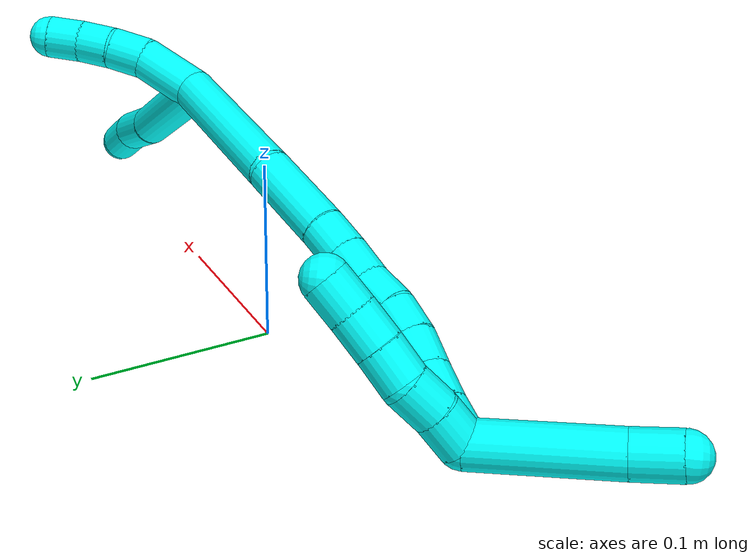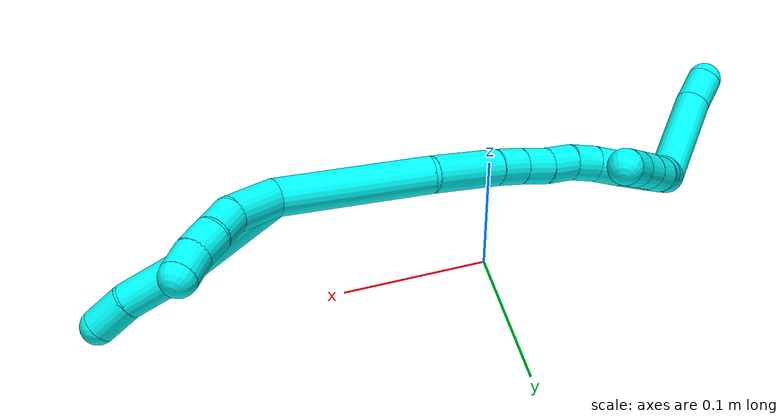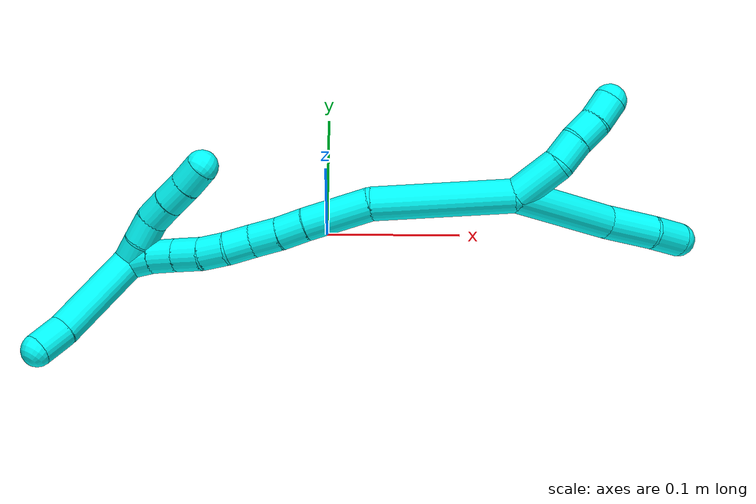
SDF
<sdf version="1.7">
 <world name="default">
  <model name="3">
   <static>0</static>
   <link name="3">
    <collision name="collision-cylinder-e_1_2_8">
     <pose>0.025247 -0.028194 -0.01684 2.10923 0.655415 1.07945</pose>
     <geometry><cylinder><radius>0.0125</radius><length>0.082846</length></cylinder></geometry>
     <surface>
      <friction><ode><mu>1.16</mu><mu2>1.16</mu2><slip1>0</slip1><slip2>0</slip2></ode></friction>
      <contact><ode><kp>1e+06</kp><kd>1</kd><max_vel>0</max_vel><min_depth>0.001</min_depth></ode></contact>
     </surface>
    </collision>
    <visual name="visual-cylinder-e_1_2_8">
     <pose>0.025247 -0.028194 -0.01684 2.10923 0.655415 1.07945</pose>
     <geometry><cylinder><radius>0.0125</radius><length>0.082846</length></cylinder></geometry>
     <material><ambient>0.003922 1 0.996078 1</ambient></material>
    </visual>
    <collision name="collision-cylinder-e_2_8_9">
     <pose>0.064624 -0.067792 -0.042245 2.21493 0.780762 1.378</pose>
     <geometry><cylinder><radius>0.0125</radius><length>0.040153</length></cylinder></geometry>
     <surface>
      <friction><ode><mu>1.16</mu><mu2>1.16</mu2><slip1>0</slip1><slip2>0</slip2></ode></friction>
      <contact><ode><kp>1e+06</kp><kd>1</kd><max_vel>0</max_vel><min_depth>0.001</min_depth></ode></contact>
     </surface>
    </collision>
    <visual name="visual-cylinder-e_2_8_9">
     <pose>0.064624 -0.067792 -0.042245 2.21493 0.780762 1.378</pose>
     <geometry><cylinder><radius>0.0125</radius><length>0.040153</length></cylinder></geometry>
     <material><ambient>0.003922 1 0.996078 1</ambient></material>
    </visual>
    <collision name="collision-cylinder-e_3_9_6">
     <pose>0.086356 -0.08876 -0.056554 2.11173 0.598076 0.997709</pose>
     <geometry><cylinder><radius>0.0125</radius><length>0.027</length></cylinder></geometry>
     <surface>
      <friction><ode><mu>1.16</mu><mu2>1.16</mu2><slip1>0</slip1><slip2>0</slip2></ode></friction>
      <contact><ode><kp>1e+06</kp><kd>1</kd><max_vel>0</max_vel><min_depth>0.001</min_depth></ode></contact>
     </surface>
    </collision>
    <visual name="visual-cylinder-e_3_9_6">
     <pose>0.086356 -0.08876 -0.056554 2.11173 0.598076 0.997709</pose>
     <geometry><cylinder><radius>0.0125</radius><length>0.027</length></cylinder></geometry>
     <material><ambient>0.003922 1 0.996078 1</ambient></material>
    </visual>
    <collision name="collision-cylinder-e_1_2_10">
     <pose>0.008857 0.004224 -0.016345 -2.88869 0.483183 -2.18897</pose>
     <geometry><cylinder><radius>0.0125</radius><length>0.038129</length></cylinder></geometry>
     <surface>
      <friction><ode><mu>1.16</mu><mu2>1.16</mu2><slip1>0</slip1><slip2>0</slip2></ode></friction>
      <contact><ode><kp>1e+06</kp><kd>1</kd><max_vel>0</max_vel><min_depth>0.001</min_depth></ode></contact>
     </surface>
    </collision>
    <visual name="visual-cylinder-e_1_2_10">
     <pose>0.008857 0.004224 -0.016345 -2.88869 0.483183 -2.18897</pose>
     <geometry><cylinder><radius>0.0125</radius><length>0.038129</length></cylinder></geometry>
     <material><ambient>0.003922 1 0.996078 1</ambient></material>
    </visual>
    <collision name="collision-cylinder-e_2_10_11">
     <pose>0.019483 0.009858 -0.043278 -3.00921 0.164019 -1.78422</pose>
     <geometry><cylinder><radius>0.0125</radius><length>0.021652</length></cylinder></geometry>
     <surface>
      <friction><ode><mu>1.16</mu><mu2>1.16</mu2><slip1>0</slip1><slip2>0</slip2></ode></friction>
      <contact><ode><kp>1e+06</kp><kd>1</kd><max_vel>0</max_vel><min_depth>0.001</min_depth></ode></contact>
     </surface>
    </collision>
    <visual name="visual-cylinder-e_2_10_11">
     <pose>0.019483 0.009858 -0.043278 -3.00921 0.164019 -1.78422</pose>
     <geometry><cylinder><radius>0.0125</radius><length>0.021652</length></cylinder></geometry>
     <material><ambient>0.003922 1 0.996078 1</ambient></material>
    </visual>
    <collision name="collision-cylinder-e_3_11_12">
     <pose>0.023696 0.011181 -0.063599 3.13271 0.246197 3.06979</pose>
     <geometry><cylinder><radius>0.0125</radius><length>0.020074</length></cylinder></geometry>
     <surface>
      <friction><ode><mu>1.16</mu><mu2>1.16</mu2><slip1>0</slip1><slip2>0</slip2></ode></friction>
      <contact><ode><kp>1e+06</kp><kd>1</kd><max_vel>0</max_vel><min_depth>0.001</min_depth></ode></contact>
     </surface>
    </collision>
    <visual name="visual-cylinder-e_3_11_12">
     <pose>0.023696 0.011181 -0.063599 3.13271 0.246197 3.06979</pose>
     <geometry><cylinder><radius>0.0125</radius><length>0.020074</length></cylinder></geometry>
     <material><ambient>0.003922 1 0.996078 1</ambient></material>
    </visual>
    <collision name="collision-cylinder-e_4_12_5">
     <pose>0.026745 0.0112 -0.083386 -3.13114 0.059853 -2.79582</pose>
     <geometry><cylinder><radius>0.0125</radius><length>0.020145</length></cylinder></geometry>
     <surface>
      <friction><ode><mu>1.16</mu><mu2>1.16</mu2><slip1>0</slip1><slip2>0</slip2></ode></friction>
      <contact><ode><kp>1e+06</kp><kd>1</kd><max_vel>0</max_vel><min_depth>0.001</min_depth></ode></contact>
     </surface>
    </collision>
    <visual name="visual-cylinder-e_4_12_5">
     <pose>0.026745 0.0112 -0.083386 -3.13114 0.059853 -2.79582</pose>
     <geometry><cylinder><radius>0.0125</radius><length>0.020145</length></cylinder></geometry>
     <material><ambient>0.003922 1 0.996078 1</ambient></material>
    </visual>
    <collision name="collision-cylinder-e_1_2_13">
     <pose>-0.044982 0.00254 0.027188 -0.093152 -1.02521 0.05245</pose>
     <geometry><cylinder><radius>0.0125</radius><length>0.105244</length></cylinder></geometry>
     <surface>
      <friction><ode><mu>1.16</mu><mu2>1.16</mu2><slip1>0</slip1><slip2>0</slip2></ode></friction>
      <contact><ode><kp>1e+06</kp><kd>1</kd><max_vel>0</max_vel><min_depth>0.001</min_depth></ode></contact>
     </surface>
    </collision>
    <visual name="visual-cylinder-e_1_2_13">
     <pose>-0.044982 0.00254 0.027188 -0.093152 -1.02521 0.05245</pose>
     <geometry><cylinder><radius>0.0125</radius><length>0.105244</length></cylinder></geometry>
     <material><ambient>0.003922 1 0.996078 1</ambient></material>
    </visual>
    <collision name="collision-cylinder-e_2_13_14">
     <pose>-0.108899 0.000938 0.070528 0.251033 -0.848789 -0.113906</pose>
     <geometry><cylinder><radius>0.0125</radius><length>0.050459</length></cylinder></geometry>
     <surface>
      <friction><ode><mu>1.16</mu><mu2>1.16</mu2><slip1>0</slip1><slip2>0</slip2></ode></friction>
      <contact><ode><kp>1e+06</kp><kd>1</kd><max_vel>0</max_vel><min_depth>0.001</min_depth></ode></contact>
     </surface>
    </collision>
    <visual name="visual-cylinder-e_2_13_14">
     <pose>-0.108899 0.000938 0.070528 0.251033 -0.848789 -0.113906</pose>
     <geometry><cylinder><radius>0.0125</radius><length>0.050459</length></cylinder></geometry>
     <material><ambient>0.003922 1 0.996078 1</ambient></material>
    </visual>
    <collision name="collision-cylinder-e_3_14_15">
     <pose>-0.135532 -0.005643 0.093288 0.353487 -0.829688 -0.156995</pose>
     <geometry><cylinder><radius>0.0125</radius><length>0.02087</length></cylinder></geometry>
     <surface>
      <friction><ode><mu>1.16</mu><mu2>1.16</mu2><slip1>0</slip1><slip2>0</slip2></ode></friction>
      <contact><ode><kp>1e+06</kp><kd>1</kd><max_vel>0</max_vel><min_depth>0.001</min_depth></ode></contact>
     </surface>
    </collision>
    <visual name="visual-cylinder-e_3_14_15">
     <pose>-0.135532 -0.005643 0.093288 0.353487 -0.829688 -0.156995</pose>
     <geometry><cylinder><radius>0.0125</radius><length>0.02087</length></cylinder></geometry>
     <material><ambient>0.003922 1 0.996078 1</ambient></material>
    </visual>
    <collision name="collision-cylinder-e_4_15_16">
     <pose>-0.15173 -0.010359 0.106163 0.348629 -0.905689 -0.170953</pose>
     <geometry><cylinder><radius>0.0125</radius><length>0.021605</length></cylinder></geometry>
     <surface>
      <friction><ode><mu>1.16</mu><mu2>1.16</mu2><slip1>0</slip1><slip2>0</slip2></ode></friction>
      <contact><ode><kp>1e+06</kp><kd>1</kd><max_vel>0</max_vel><min_depth>0.001</min_depth></ode></contact>
     </surface>
    </collision>
    <visual name="visual-cylinder-e_4_15_16">
     <pose>-0.15173 -0.010359 0.106163 0.348629 -0.905689 -0.170953</pose>
     <geometry><cylinder><radius>0.0125</radius><length>0.021605</length></cylinder></geometry>
     <material><ambient>0.003922 1 0.996078 1</ambient></material>
    </visual>
    <collision name="collision-cylinder-e_5_16_17">
     <pose>-0.167956 -0.013878 0.119079 0.184548 -0.851598 -0.08389</pose>
     <geometry><cylinder><radius>0.0125</radius><length>0.02054</length></cylinder></geometry>
     <surface>
      <friction><ode><mu>1.16</mu><mu2>1.16</mu2><slip1>0</slip1><slip2>0</slip2></ode></friction>
      <contact><ode><kp>1e+06</kp><kd>1</kd><max_vel>0</max_vel><min_depth>0.001</min_depth></ode></contact>
     </surface>
    </collision>
    <visual name="visual-cylinder-e_5_16_17">
     <pose>-0.167956 -0.013878 0.119079 0.184548 -0.851598 -0.08389</pose>
     <geometry><cylinder><radius>0.0125</radius><length>0.02054</length></cylinder></geometry>
     <material><ambient>0.003922 1 0.996078 1</ambient></material>
    </visual>
    <collision name="collision-cylinder-e_6_17_18">
     <pose>-0.183935 -0.017402 0.130935 0.413291 -0.967709 -0.219453</pose>
     <geometry><cylinder><radius>0.0125</radius><length>0.020041</length></cylinder></geometry>
     <surface>
      <friction><ode><mu>1.16</mu><mu2>1.16</mu2><slip1>0</slip1><slip2>0</slip2></ode></friction>
      <contact><ode><kp>1e+06</kp><kd>1</kd><max_vel>0</max_vel><min_depth>0.001</min_depth></ode></contact>
     </surface>
    </collision>
    <visual name="visual-cylinder-e_6_17_18">
     <pose>-0.183935 -0.017402 0.130935 0.413291 -0.967709 -0.219453</pose>
     <geometry><cylinder><radius>0.0125</radius><length>0.020041</length></cylinder></geometry>
     <material><ambient>0.003922 1 0.996078 1</ambient></material>
    </visual>
    <collision name="collision-cylinder-e_7_18_19">
     <pose>-0.201646 -0.022081 0.140082 0.546226 -1.11695 -0.346533</pose>
     <geometry><cylinder><radius>0.0125</radius><length>0.021046</length></cylinder></geometry>
     <surface>
      <friction><ode><mu>1.16</mu><mu2>1.16</mu2><slip1>0</slip1><slip2>0</slip2></ode></friction>
      <contact><ode><kp>1e+06</kp><kd>1</kd><max_vel>0</max_vel><min_depth>0.001</min_depth></ode></contact>
     </surface>
    </collision>
    <visual name="visual-cylinder-e_7_18_19">
     <pose>-0.201646 -0.022081 0.140082 0.546226 -1.11695 -0.346533</pose>
     <geometry><cylinder><radius>0.0125</radius><length>0.021046</length></cylinder></geometry>
     <material><ambient>0.003922 1 0.996078 1</ambient></material>
    </visual>
    <collision name="collision-cylinder-e_8_19_20">
     <pose>-0.22006 -0.026636 0.148002 0.497075 -1.10292 -0.309714</pose>
     <geometry><cylinder><radius>0.0125</radius><length>0.02007</length></cylinder></geometry>
     <surface>
      <friction><ode><mu>1.16</mu><mu2>1.16</mu2><slip1>0</slip1><slip2>0</slip2></ode></friction>
      <contact><ode><kp>1e+06</kp><kd>1</kd><max_vel>0</max_vel><min_depth>0.001</min_depth></ode></contact>
     </surface>
    </collision>
    <visual name="visual-cylinder-e_8_19_20">
     <pose>-0.22006 -0.026636 0.148002 0.497075 -1.10292 -0.309714</pose>
     <geometry><cylinder><radius>0.0125</radius><length>0.02007</length></cylinder></geometry>
     <material><ambient>0.003922 1 0.996078 1</ambient></material>
    </visual>
    <collision name="collision-cylinder-e_9_20_1">
     <pose>-0.237287 -0.031683 0.15693 0.528415 -0.964831 -0.281473</pose>
     <geometry><cylinder><radius>0.0125</radius><length>0.020126</length></cylinder></geometry>
     <surface>
      <friction><ode><mu>1.16</mu><mu2>1.16</mu2><slip1>0</slip1><slip2>0</slip2></ode></friction>
      <contact><ode><kp>1e+06</kp><kd>1</kd><max_vel>0</max_vel><min_depth>0.001</min_depth></ode></contact>
     </surface>
    </collision>
    <visual name="visual-cylinder-e_9_20_1">
     <pose>-0.237287 -0.031683 0.15693 0.528415 -0.964831 -0.281473</pose>
     <geometry><cylinder><radius>0.0125</radius><length>0.020126</length></cylinder></geometry>
     <material><ambient>0.003922 1 0.996078 1</ambient></material>
    </visual>
    <collision name="collision-cylinder-e_1_1_21">
     <pose>-0.249582 -0.028327 0.198455 -0.169146 -0.108005 0.009165</pose>
     <geometry><cylinder><radius>0.0125</radius><length>0.074644</length></cylinder></geometry>
     <surface>
      <friction><ode><mu>1.16</mu><mu2>1.16</mu2><slip1>0</slip1><slip2>0</slip2></ode></friction>
      <contact><ode><kp>1e+06</kp><kd>1</kd><max_vel>0</max_vel><min_depth>0.001</min_depth></ode></contact>
     </surface>
    </collision>
    <visual name="visual-cylinder-e_1_1_21">
     <pose>-0.249582 -0.028327 0.198455 -0.169146 -0.108005 0.009165</pose>
     <geometry><cylinder><radius>0.0125</radius><length>0.074644</length></cylinder></geometry>
     <material><ambient>0.003922 1 0.996078 1</ambient></material>
    </visual>
    <collision name="collision-cylinder-e_2_21_4">
     <pose>-0.256019 -0.018562 0.246968 -0.286622 -0.191627 0.027735</pose>
     <geometry><cylinder><radius>0.0125</radius><length>0.025356</length></cylinder></geometry>
     <surface>
      <friction><ode><mu>1.16</mu><mu2>1.16</mu2><slip1>0</slip1><slip2>0</slip2></ode></friction>
      <contact><ode><kp>1e+06</kp><kd>1</kd><max_vel>0</max_vel><min_depth>0.001</min_depth></ode></contact>
     </surface>
    </collision>
    <visual name="visual-cylinder-e_2_21_4">
     <pose>-0.256019 -0.018562 0.246968 -0.286622 -0.191627 0.027735</pose>
     <geometry><cylinder><radius>0.0125</radius><length>0.025356</length></cylinder></geometry>
     <material><ambient>0.003922 1 0.996078 1</ambient></material>
    </visual>
    <collision name="collision-cylinder-e_1_1_22">
     <pose>-0.243234 -0.027841 0.15486 -2.37719 0.234621 -0.570393</pose>
     <geometry><cylinder><radius>0.0125</radius><length>0.02</length></cylinder></geometry>
     <surface>
      <friction><ode><mu>1.16</mu><mu2>1.16</mu2><slip1>0</slip1><slip2>0</slip2></ode></friction>
      <contact><ode><kp>1e+06</kp><kd>1</kd><max_vel>0</max_vel><min_depth>0.001</min_depth></ode></contact>
     </surface>
    </collision>
    <visual name="visual-cylinder-e_1_1_22">
     <pose>-0.243234 -0.027841 0.15486 -2.37719 0.234621 -0.570393</pose>
     <geometry><cylinder><radius>0.0125</radius><length>0.02</length></cylinder></geometry>
     <material><ambient>0.003922 1 0.996078 1</ambient></material>
    </visual>
    <collision name="collision-cylinder-e_2_22_23">
     <pose>-0.23897 -0.015295 0.139938 -2.50713 0.195104 -0.579371</pose>
     <geometry><cylinder><radius>0.0125</radius><length>0.02</length></cylinder></geometry>
     <surface>
      <friction><ode><mu>1.16</mu><mu2>1.16</mu2><slip1>0</slip1><slip2>0</slip2></ode></friction>
      <contact><ode><kp>1e+06</kp><kd>1</kd><max_vel>0</max_vel><min_depth>0.001</min_depth></ode></contact>
     </surface>
    </collision>
    <visual name="visual-cylinder-e_2_22_23">
     <pose>-0.23897 -0.015295 0.139938 -2.50713 0.195104 -0.579371</pose>
     <geometry><cylinder><radius>0.0125</radius><length>0.02</length></cylinder></geometry>
     <material><ambient>0.003922 1 0.996078 1</ambient></material>
    </visual>
    <collision name="collision-cylinder-e_3_23_24">
     <pose>-0.23246 -0.00363 0.125337 -2.42382 0.474747 -1.14561</pose>
     <geometry><cylinder><radius>0.0125</radius><length>0.02</length></cylinder></geometry>
     <surface>
      <friction><ode><mu>1.16</mu><mu2>1.16</mu2><slip1>0</slip1><slip2>0</slip2></ode></friction>
      <contact><ode><kp>1e+06</kp><kd>1</kd><max_vel>0</max_vel><min_depth>0.001</min_depth></ode></contact>
     </surface>
    </collision>
    <visual name="visual-cylinder-e_3_23_24">
     <pose>-0.23246 -0.00363 0.125337 -2.42382 0.474747 -1.14561</pose>
     <geometry><cylinder><radius>0.0125</radius><length>0.02</length></cylinder></geometry>
     <material><ambient>0.003922 1 0.996078 1</ambient></material>
    </visual>
    <collision name="collision-cylinder-e_4_24_25">
     <pose>-0.223245 0.007738 0.111711 -2.46892 0.482968 -1.22741</pose>
     <geometry><cylinder><radius>0.0125</radius><length>0.02</length></cylinder></geometry>
     <surface>
      <friction><ode><mu>1.16</mu><mu2>1.16</mu2><slip1>0</slip1><slip2>0</slip2></ode></friction>
      <contact><ode><kp>1e+06</kp><kd>1</kd><max_vel>0</max_vel><min_depth>0.001</min_depth></ode></contact>
     </surface>
    </collision>
    <visual name="visual-cylinder-e_4_24_25">
     <pose>-0.223245 0.007738 0.111711 -2.46892 0.482968 -1.22741</pose>
     <geometry><cylinder><radius>0.0125</radius><length>0.02</length></cylinder></geometry>
     <material><ambient>0.003922 1 0.996078 1</ambient></material>
    </visual>
    <collision name="collision-cylinder-e_5_25_3">
     <pose>-0.214572 0.019017 0.097673 -2.46067 0.414709 -1.07179</pose>
     <geometry><cylinder><radius>0.0125</radius><length>0.02</length></cylinder></geometry>
     <surface>
      <friction><ode><mu>1.16</mu><mu2>1.16</mu2><slip1>0</slip1><slip2>0</slip2></ode></friction>
      <contact><ode><kp>1e+06</kp><kd>1</kd><max_vel>0</max_vel><min_depth>0.001</min_depth></ode></contact>
     </surface>
    </collision>
    <visual name="visual-cylinder-e_5_25_3">
     <pose>-0.214572 0.019017 0.097673 -2.46067 0.414709 -1.07179</pose>
     <geometry><cylinder><radius>0.0125</radius><length>0.02</length></cylinder></geometry>
     <material><ambient>0.003922 1 0.996078 1</ambient></material>
    </visual>
    <collision name="collision-sphere-3">
     <pose>-0.210543 0.024779 0.090561 0 -0 0</pose>
     <geometry><sphere><radius>0.0125</radius></sphere></geometry>
     <surface>
      <friction><ode><mu>1.16</mu><mu2>1.16</mu2><slip1>0</slip1><slip2>0</slip2></ode></friction>
      <contact><ode><kp>1e+06</kp><kd>1</kd><max_vel>0</max_vel><min_depth>0.001</min_depth></ode></contact>
     </surface>
    </collision>
    <visual name="visual-sphere-3">
     <pose>-0.210543 0.024779 0.090561 0 -0 0</pose>
     <geometry><sphere><radius>0.0125</radius></sphere></geometry>
     <material><ambient>0.003922 1 0.996078 1</ambient></material>
    </visual>
    <collision name="collision-sphere-25">
     <pose>-0.218601 0.013256 0.104784 0 -0 0</pose>
     <geometry><sphere><radius>0.0125</radius></sphere></geometry>
     <surface>
      <friction><ode><mu>1.16</mu><mu2>1.16</mu2><slip1>0</slip1><slip2>0</slip2></ode></friction>
      <contact><ode><kp>1e+06</kp><kd>1</kd><max_vel>0</max_vel><min_depth>0.001</min_depth></ode></contact>
     </surface>
    </collision>
    <visual name="visual-sphere-25">
     <pose>-0.218601 0.013256 0.104784 0 -0 0</pose>
     <geometry><sphere><radius>0.0125</radius></sphere></geometry>
     <material><ambient>0.003922 1 0.996078 1</ambient></material>
    </visual>
    <collision name="collision-sphere-24">
     <pose>-0.227889 0.002219 0.118638 0 -0 0</pose>
     <geometry><sphere><radius>0.0125</radius></sphere></geometry>
     <surface>
      <friction><ode><mu>1.16</mu><mu2>1.16</mu2><slip1>0</slip1><slip2>0</slip2></ode></friction>
      <contact><ode><kp>1e+06</kp><kd>1</kd><max_vel>0</max_vel><min_depth>0.001</min_depth></ode></contact>
     </surface>
    </collision>
    <visual name="visual-sphere-24">
     <pose>-0.227889 0.002219 0.118638 0 -0 0</pose>
     <geometry><sphere><radius>0.0125</radius></sphere></geometry>
     <material><ambient>0.003922 1 0.996078 1</ambient></material>
    </visual>
    <collision name="collision-sphere-23">
     <pose>-0.237032 -0.00948 0.132037 0 -0 0</pose>
     <geometry><sphere><radius>0.0125</radius></sphere></geometry>
     <surface>
      <friction><ode><mu>1.16</mu><mu2>1.16</mu2><slip1>0</slip1><slip2>0</slip2></ode></friction>
      <contact><ode><kp>1e+06</kp><kd>1</kd><max_vel>0</max_vel><min_depth>0.001</min_depth></ode></contact>
     </surface>
    </collision>
    <visual name="visual-sphere-23">
     <pose>-0.237032 -0.00948 0.132037 0 -0 0</pose>
     <geometry><sphere><radius>0.0125</radius></sphere></geometry>
     <material><ambient>0.003922 1 0.996078 1</ambient></material>
    </visual>
    <collision name="collision-sphere-22">
     <pose>-0.240909 -0.02111 0.147839 0 -0 0</pose>
     <geometry><sphere><radius>0.0125</radius></sphere></geometry>
     <surface>
      <friction><ode><mu>1.16</mu><mu2>1.16</mu2><slip1>0</slip1><slip2>0</slip2></ode></friction>
      <contact><ode><kp>1e+06</kp><kd>1</kd><max_vel>0</max_vel><min_depth>0.001</min_depth></ode></contact>
     </surface>
    </collision>
    <visual name="visual-sphere-22">
     <pose>-0.240909 -0.02111 0.147839 0 -0 0</pose>
     <geometry><sphere><radius>0.0125</radius></sphere></geometry>
     <material><ambient>0.003922 1 0.996078 1</ambient></material>
    </visual>
    <collision name="collision-sphere-4">
     <pose>-0.258434 -0.015043 0.258906 0 -0 0</pose>
     <geometry><sphere><radius>0.0125</radius></sphere></geometry>
     <surface>
      <friction><ode><mu>1.16</mu><mu2>1.16</mu2><slip1>0</slip1><slip2>0</slip2></ode></friction>
      <contact><ode><kp>1e+06</kp><kd>1</kd><max_vel>0</max_vel><min_depth>0.001</min_depth></ode></contact>
     </surface>
    </collision>
    <visual name="visual-sphere-4">
     <pose>-0.258434 -0.015043 0.258906 0 -0 0</pose>
     <geometry><sphere><radius>0.0125</radius></sphere></geometry>
     <material><ambient>0.003922 1 0.996078 1</ambient></material>
    </visual>
    <collision name="collision-sphere-21">
     <pose>-0.253605 -0.02208 0.23503 0 -0 0</pose>
     <geometry><sphere><radius>0.0125</radius></sphere></geometry>
     <surface>
      <friction><ode><mu>1.16</mu><mu2>1.16</mu2><slip1>0</slip1><slip2>0</slip2></ode></friction>
      <contact><ode><kp>1e+06</kp><kd>1</kd><max_vel>0</max_vel><min_depth>0.001</min_depth></ode></contact>
     </surface>
    </collision>
    <visual name="visual-sphere-21">
     <pose>-0.253605 -0.02208 0.23503 0 -0 0</pose>
     <geometry><sphere><radius>0.0125</radius></sphere></geometry>
     <material><ambient>0.003922 1 0.996078 1</ambient></material>
    </visual>
    <collision name="collision-sphere-1">
     <pose>-0.245558 -0.034573 0.16188 0 -0 0</pose>
     <geometry><sphere><radius>0.0125</radius></sphere></geometry>
     <surface>
      <friction><ode><mu>1.16</mu><mu2>1.16</mu2><slip1>0</slip1><slip2>0</slip2></ode></friction>
      <contact><ode><kp>1e+06</kp><kd>1</kd><max_vel>0</max_vel><min_depth>0.001</min_depth></ode></contact>
     </surface>
    </collision>
    <visual name="visual-sphere-1">
     <pose>-0.245558 -0.034573 0.16188 0 -0 0</pose>
     <geometry><sphere><radius>0.0125</radius></sphere></geometry>
     <material><ambient>0.003922 1 0.996078 1</ambient></material>
    </visual>
    <collision name="collision-sphere-11">
     <pose>0.02125 0.011268 -0.053865 0 -0 0</pose>
     <geometry><sphere><radius>0.0125</radius></sphere></geometry>
     <surface>
      <friction><ode><mu>1.16</mu><mu2>1.16</mu2><slip1>0</slip1><slip2>0</slip2></ode></friction>
      <contact><ode><kp>1e+06</kp><kd>1</kd><max_vel>0</max_vel><min_depth>0.001</min_depth></ode></contact>
     </surface>
    </collision>
    <visual name="visual-sphere-11">
     <pose>0.02125 0.011268 -0.053865 0 -0 0</pose>
     <geometry><sphere><radius>0.0125</radius></sphere></geometry>
     <material><ambient>0.003922 1 0.996078 1</ambient></material>
    </visual>
    <collision name="collision-sphere-10">
     <pose>0.017715 0.008448 -0.03269 0 -0 0</pose>
     <geometry><sphere><radius>0.0125</radius></sphere></geometry>
     <surface>
      <friction><ode><mu>1.16</mu><mu2>1.16</mu2><slip1>0</slip1><slip2>0</slip2></ode></friction>
      <contact><ode><kp>1e+06</kp><kd>1</kd><max_vel>0</max_vel><min_depth>0.001</min_depth></ode></contact>
     </surface>
    </collision>
    <visual name="visual-sphere-10">
     <pose>0.017715 0.008448 -0.03269 0 -0 0</pose>
     <geometry><sphere><radius>0.0125</radius></sphere></geometry>
     <material><ambient>0.003922 1 0.996078 1</ambient></material>
    </visual>
    <collision name="collision-sphere-6">
     <pose>0.093957 -0.098324 -0.062299 0 -0 0</pose>
     <geometry><sphere><radius>0.0125</radius></sphere></geometry>
     <surface>
      <friction><ode><mu>1.16</mu><mu2>1.16</mu2><slip1>0</slip1><slip2>0</slip2></ode></friction>
      <contact><ode><kp>1e+06</kp><kd>1</kd><max_vel>0</max_vel><min_depth>0.001</min_depth></ode></contact>
     </surface>
    </collision>
    <visual name="visual-sphere-6">
     <pose>0.093957 -0.098324 -0.062299 0 -0 0</pose>
     <geometry><sphere><radius>0.0125</radius></sphere></geometry>
     <material><ambient>0.003922 1 0.996078 1</ambient></material>
    </visual>
    <collision name="collision-sphere-9">
     <pose>0.078754 -0.079196 -0.050809 0 -0 0</pose>
     <geometry><sphere><radius>0.0125</radius></sphere></geometry>
     <surface>
      <friction><ode><mu>1.16</mu><mu2>1.16</mu2><slip1>0</slip1><slip2>0</slip2></ode></friction>
      <contact><ode><kp>1e+06</kp><kd>1</kd><max_vel>0</max_vel><min_depth>0.001</min_depth></ode></contact>
     </surface>
    </collision>
    <visual name="visual-sphere-9">
     <pose>0.078754 -0.079196 -0.050809 0 -0 0</pose>
     <geometry><sphere><radius>0.0125</radius></sphere></geometry>
     <material><ambient>0.003922 1 0.996078 1</ambient></material>
    </visual>
    <collision name="collision-sphere-2">
     <geometry><sphere><radius>0.0125</radius></sphere></geometry>
     <surface>
      <friction><ode><mu>1.16</mu><mu2>1.16</mu2><slip1>0</slip1><slip2>0</slip2></ode></friction>
      <contact><ode><kp>1e+06</kp><kd>1</kd><max_vel>0</max_vel><min_depth>0.001</min_depth></ode></contact>
     </surface>
    </collision>
    <visual name="visual-sphere-2">
     <geometry><sphere><radius>0.0125</radius></sphere></geometry>
     <material><ambient>0.003922 1 0.996078 1</ambient></material>
    </visual>
    <collision name="collision-sphere-19">
     <pose>-0.211103 -0.024477 0.144024 0 -0 0</pose>
     <geometry><sphere><radius>0.0125</radius></sphere></geometry>
     <surface>
      <friction><ode><mu>1.16</mu><mu2>1.16</mu2><slip1>0</slip1><slip2>0</slip2></ode></friction>
      <contact><ode><kp>1e+06</kp><kd>1</kd><max_vel>0</max_vel><min_depth>0.001</min_depth></ode></contact>
     </surface>
    </collision>
    <visual name="visual-sphere-19">
     <pose>-0.211103 -0.024477 0.144024 0 -0 0</pose>
     <geometry><sphere><radius>0.0125</radius></sphere></geometry>
     <material><ambient>0.003922 1 0.996078 1</ambient></material>
    </visual>
    <collision name="collision-sphere-8">
     <pose>0.050494 -0.056387 -0.03368 0 -0 0</pose>
     <geometry><sphere><radius>0.0125</radius></sphere></geometry>
     <surface>
      <friction><ode><mu>1.16</mu><mu2>1.16</mu2><slip1>0</slip1><slip2>0</slip2></ode></friction>
      <contact><ode><kp>1e+06</kp><kd>1</kd><max_vel>0</max_vel><min_depth>0.001</min_depth></ode></contact>
     </surface>
    </collision>
    <visual name="visual-sphere-8">
     <pose>0.050494 -0.056387 -0.03368 0 -0 0</pose>
     <geometry><sphere><radius>0.0125</radius></sphere></geometry>
     <material><ambient>0.003922 1 0.996078 1</ambient></material>
    </visual>
    <collision name="collision-sphere-12">
     <pose>0.026143 0.011095 -0.073332 0 -0 0</pose>
     <geometry><sphere><radius>0.0125</radius></sphere></geometry>
     <surface>
      <friction><ode><mu>1.16</mu><mu2>1.16</mu2><slip1>0</slip1><slip2>0</slip2></ode></friction>
      <contact><ode><kp>1e+06</kp><kd>1</kd><max_vel>0</max_vel><min_depth>0.001</min_depth></ode></contact>
     </surface>
    </collision>
    <visual name="visual-sphere-12">
     <pose>0.026143 0.011095 -0.073332 0 -0 0</pose>
     <geometry><sphere><radius>0.0125</radius></sphere></geometry>
     <material><ambient>0.003922 1 0.996078 1</ambient></material>
    </visual>
    <collision name="collision-sphere-5">
     <pose>0.027348 0.011305 -0.09344 0 -0 0</pose>
     <geometry><sphere><radius>0.0125</radius></sphere></geometry>
     <surface>
      <friction><ode><mu>1.16</mu><mu2>1.16</mu2><slip1>0</slip1><slip2>0</slip2></ode></friction>
      <contact><ode><kp>1e+06</kp><kd>1</kd><max_vel>0</max_vel><min_depth>0.001</min_depth></ode></contact>
     </surface>
    </collision>
    <visual name="visual-sphere-5">
     <pose>0.027348 0.011305 -0.09344 0 -0 0</pose>
     <geometry><sphere><radius>0.0125</radius></sphere></geometry>
     <material><ambient>0.003922 1 0.996078 1</ambient></material>
    </visual>
    <collision name="collision-sphere-13">
     <pose>-0.089965 0.00508 0.054376 0 -0 0</pose>
     <geometry><sphere><radius>0.0125</radius></sphere></geometry>
     <surface>
      <friction><ode><mu>1.16</mu><mu2>1.16</mu2><slip1>0</slip1><slip2>0</slip2></ode></friction>
      <contact><ode><kp>1e+06</kp><kd>1</kd><max_vel>0</max_vel><min_depth>0.001</min_depth></ode></contact>
     </surface>
    </collision>
    <visual name="visual-sphere-13">
     <pose>-0.089965 0.00508 0.054376 0 -0 0</pose>
     <geometry><sphere><radius>0.0125</radius></sphere></geometry>
     <material><ambient>0.003922 1 0.996078 1</ambient></material>
    </visual>
    <collision name="collision-sphere-14">
     <pose>-0.127834 -0.003204 0.086679 0 -0 0</pose>
     <geometry><sphere><radius>0.0125</radius></sphere></geometry>
     <surface>
      <friction><ode><mu>1.16</mu><mu2>1.16</mu2><slip1>0</slip1><slip2>0</slip2></ode></friction>
      <contact><ode><kp>1e+06</kp><kd>1</kd><max_vel>0</max_vel><min_depth>0.001</min_depth></ode></contact>
     </surface>
    </collision>
    <visual name="visual-sphere-14">
     <pose>-0.127834 -0.003204 0.086679 0 -0 0</pose>
     <geometry><sphere><radius>0.0125</radius></sphere></geometry>
     <material><ambient>0.003922 1 0.996078 1</ambient></material>
    </visual>
    <collision name="collision-sphere-15">
     <pose>-0.14323 -0.008081 0.099897 0 -0 0</pose>
     <geometry><sphere><radius>0.0125</radius></sphere></geometry>
     <surface>
      <friction><ode><mu>1.16</mu><mu2>1.16</mu2><slip1>0</slip1><slip2>0</slip2></ode></friction>
      <contact><ode><kp>1e+06</kp><kd>1</kd><max_vel>0</max_vel><min_depth>0.001</min_depth></ode></contact>
     </surface>
    </collision>
    <visual name="visual-sphere-15">
     <pose>-0.14323 -0.008081 0.099897 0 -0 0</pose>
     <geometry><sphere><radius>0.0125</radius></sphere></geometry>
     <material><ambient>0.003922 1 0.996078 1</ambient></material>
    </visual>
    <collision name="collision-sphere-16">
     <pose>-0.16023 -0.012636 0.112429 0 -0 0</pose>
     <geometry><sphere><radius>0.0125</radius></sphere></geometry>
     <surface>
      <friction><ode><mu>1.16</mu><mu2>1.16</mu2><slip1>0</slip1><slip2>0</slip2></ode></friction>
      <contact><ode><kp>1e+06</kp><kd>1</kd><max_vel>0</max_vel><min_depth>0.001</min_depth></ode></contact>
     </surface>
    </collision>
    <visual name="visual-sphere-16">
     <pose>-0.16023 -0.012636 0.112429 0 -0 0</pose>
     <geometry><sphere><radius>0.0125</radius></sphere></geometry>
     <material><ambient>0.003922 1 0.996078 1</ambient></material>
    </visual>
    <collision name="collision-sphere-17">
     <pose>-0.175683 -0.015119 0.12573 0 -0 0</pose>
     <geometry><sphere><radius>0.0125</radius></sphere></geometry>
     <surface>
      <friction><ode><mu>1.16</mu><mu2>1.16</mu2><slip1>0</slip1><slip2>0</slip2></ode></friction>
      <contact><ode><kp>1e+06</kp><kd>1</kd><max_vel>0</max_vel><min_depth>0.001</min_depth></ode></contact>
     </surface>
    </collision>
    <visual name="visual-sphere-17">
     <pose>-0.175683 -0.015119 0.12573 0 -0 0</pose>
     <geometry><sphere><radius>0.0125</radius></sphere></geometry>
     <material><ambient>0.003922 1 0.996078 1</ambient></material>
    </visual>
    <collision name="collision-sphere-18">
     <pose>-0.192188 -0.019684 0.13614 0 -0 0</pose>
     <geometry><sphere><radius>0.0125</radius></sphere></geometry>
     <surface>
      <friction><ode><mu>1.16</mu><mu2>1.16</mu2><slip1>0</slip1><slip2>0</slip2></ode></friction>
      <contact><ode><kp>1e+06</kp><kd>1</kd><max_vel>0</max_vel><min_depth>0.001</min_depth></ode></contact>
     </surface>
    </collision>
    <visual name="visual-sphere-18">
     <pose>-0.192188 -0.019684 0.13614 0 -0 0</pose>
     <geometry><sphere><radius>0.0125</radius></sphere></geometry>
     <material><ambient>0.003922 1 0.996078 1</ambient></material>
    </visual>
    <collision name="collision-sphere-20">
     <pose>-0.229016 -0.028794 0.15198 0 -0 0</pose>
     <geometry><sphere><radius>0.0125</radius></sphere></geometry>
     <surface>
      <friction><ode><mu>1.16</mu><mu2>1.16</mu2><slip1>0</slip1><slip2>0</slip2></ode></friction>
      <contact><ode><kp>1e+06</kp><kd>1</kd><max_vel>0</max_vel><min_depth>0.001</min_depth></ode></contact>
     </surface>
    </collision>
    <visual name="visual-sphere-20">
     <pose>-0.229016 -0.028794 0.15198 0 -0 0</pose>
     <geometry><sphere><radius>0.0125</radius></sphere></geometry>
     <material><ambient>0.003922 1 0.996078 1</ambient></material>
    </visual>
    <inertial>
     <pose>-0.101715 -0.015884 0.065784 0 -0 0</pose>
     <mass>0.75</mass>
     <inertia>
      <ixx>0.000149</ixx>
      <ixy>0</ixy>
      <ixz>0</ixz>
      <iyy>0.000211</iyy>
      <iyz>0</iyz>
      <izz>9.5e-05</izz>
     </inertia>
    </inertial>
   </link>
   <pose>0.137594 -0.016519 0.091466 1.66457 -0.121872 -0.535406</pose>
  </model>
 </world>
</sdf>
